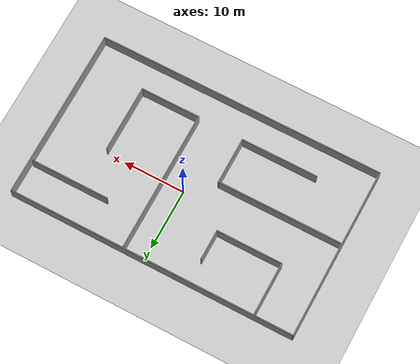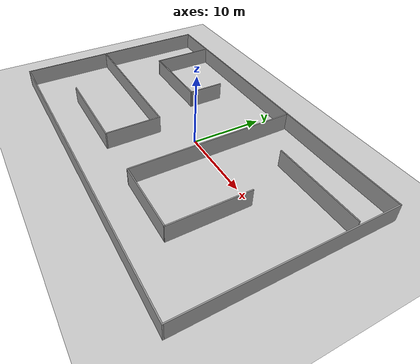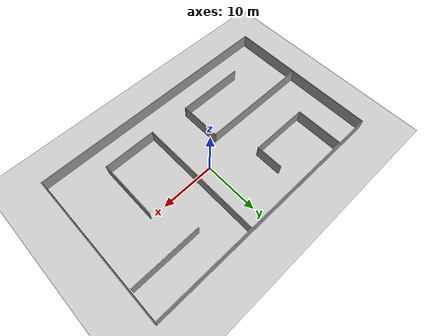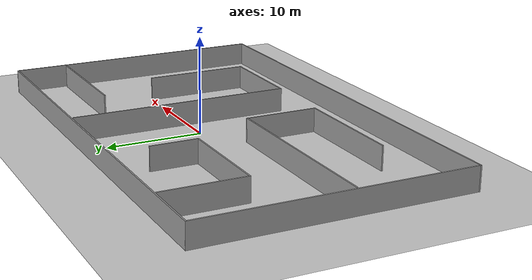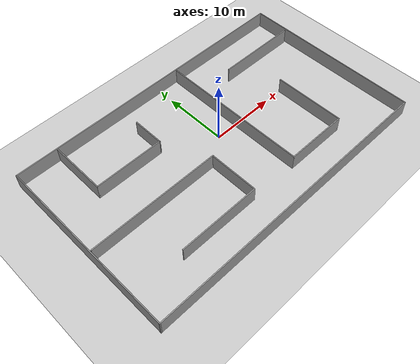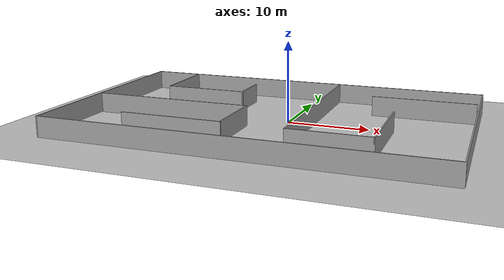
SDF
<sdf version="1.6">
 <world name="default">
  <light name="sun" type="directional">
   <pose>0 0 10 0 -0 0</pose>
   <diffuse>0.8 0.8 0.8 1</diffuse>
   <specular>0.2 0.2 0.2 1</specular>
   <attenuation>
    <range>1000</range>
    <constant>0.9</constant>
    <linear>0.01</linear>
    <quadratic>0.001</quadratic>
   </attenuation>
   <direction>-0.5 0.1 -0.9</direction>
  </light>
  <model name="ground_plane">
   <static>1</static>
   <link name="link">
    <collision name="collision">
     <geometry><plane><normal>0 0 1</normal><size>100 100</size></plane></geometry>
     <surface><friction><ode><mu>100</mu><mu2>50</mu2></ode></friction></surface>
    </collision>
    <visual name="visual">
     <cast_shadows>0</cast_shadows>
     <geometry><plane><normal>0 0 1</normal><size>100 100</size></plane></geometry>
     <material>
      <script><uri>file://media/materials/scripts/gazebo.material</uri><name>Gazebo/Grey</name></script>
     </material>
    </visual>
   </link>
  </model>
  <gravity>0 0 -9.8</gravity>
  <magnetic_field>6e-06 2.3e-05 -4.2e-05</magnetic_field>
  <atmosphere type="adiabatic"/>
  <physics name="default_physics" default="0" type="ode">
   <max_step_size>0.005</max_step_size>
   <real_time_factor>1</real_time_factor>
   <real_time_update_rate>200</real_time_update_rate>
  </physics>
  <scene><ambient>0.4 0.4 0.4 1</ambient><background>0.7 0.7 0.7 1</background><shadows>1</shadows></scene>
  <audio><device>default</device></audio>
  <spherical_coordinates>
   <surface_model>EARTH_WGS84</surface_model>
   <latitude_deg>0</latitude_deg>
   <longitude_deg>0</longitude_deg>
   <elevation>0</elevation>
   <heading_deg>0</heading_deg>
  </spherical_coordinates>
  <model name="test">
   <pose>-1.29287 -1.57756 0 0 -0 0</pose>
   <link name="Wall_0">
    <collision name="Wall_0_Collision">
     <geometry><box><size>46.75 0.15 2.5</size></box></geometry>
     <pose>0 0 1.25 0 -0 0</pose>
    </collision>
    <visual name="Wall_0_Visual">
     <pose>0 0 1.25 0 -0 0</pose>
     <geometry><box><size>46.75 0.15 2.5</size></box></geometry>
     <material>
      <script><uri>file://media/materials/scripts/gazebo.material</uri><name>Gazebo/Grey</name></script>
      <ambient>1 1 1 1</ambient>
     </material>
     <meta><layer>0</layer></meta>
    </visual>
    <pose>-1e-06 14.05 0 0 -0 0</pose>
   </link>
   <link name="Wall_1">
    <collision name="Wall_1_Collision">
     <geometry><box><size>28.25 0.15 2.5</size></box></geometry>
     <pose>0 0 1.25 0 -0 0</pose>
    </collision>
    <visual name="Wall_1_Visual">
     <pose>0 0 1.25 0 -0 0</pose>
     <geometry><box><size>28.25 0.15 2.5</size></box></geometry>
     <material>
      <script><uri>file://media/materials/scripts/gazebo.material</uri><name>Gazebo/Grey</name></script>
      <ambient>1 1 1 1</ambient>
     </material>
     <meta><layer>0</layer></meta>
    </visual>
    <pose>23.3 -0 0 0 -0 -1.5708</pose>
   </link>
   <link name="Wall_10">
    <collision name="Wall_10_Collision">
     <geometry><box><size>7.75 0.15 2.5</size></box></geometry>
     <pose>0 0 1.25 0 -0 0</pose>
    </collision>
    <visual name="Wall_10_Visual">
     <pose>0 0 1.25 0 -0 0</pose>
     <geometry><box><size>7.75 0.15 2.5</size></box></geometry>
     <material>
      <script><uri>file://media/materials/scripts/gazebo.material</uri><name>Gazebo/Grey</name></script>
      <ambient>1 1 1 1</ambient>
     </material>
     <meta><layer>0</layer></meta>
    </visual>
    <pose>-2.95528 -5.35102 0 0 -0 -1.5708</pose>
   </link>
   <link name="Wall_11">
    <collision name="Wall_11_Collision">
     <geometry><box><size>12.5 0.15 2.5</size></box></geometry>
     <pose>0 0 1.25 0 -0 0</pose>
    </collision>
    <visual name="Wall_11_Visual">
     <pose>0 0 1.25 0 -0 0</pose>
     <geometry><box><size>12.5 0.15 2.5</size></box></geometry>
     <material>
      <script><uri>file://media/materials/scripts/gazebo.material</uri><name>Gazebo/Grey</name></script>
      <ambient>1 1 1 1</ambient>
     </material>
     <meta><layer>0</layer></meta>
    </visual>
    <pose>-9.13028 -9.15102 0 0 -0 3.14159</pose>
   </link>
   <link name="Wall_13">
    <collision name="Wall_13_Collision">
     <geometry><box><size>23.25 0.15 2.5</size></box></geometry>
     <pose>0 0 1.25 0 -0 0</pose>
    </collision>
    <visual name="Wall_13_Visual">
     <pose>0 0 1.25 0 -0 0</pose>
     <geometry><box><size>23.25 0.15 2.5</size></box></geometry>
     <material>
      <script><uri>file://media/materials/scripts/gazebo.material</uri><name>Gazebo/Grey</name></script>
      <ambient>1 1 1 1</ambient>
     </material>
     <meta><layer>0</layer></meta>
    </visual>
    <pose>4.53711 2.25528 0 0 -0 -1.5708</pose>
   </link>
   <link name="Wall_14">
    <collision name="Wall_14_Collision">
     <geometry><box><size>9.75 0.15 2.5</size></box></geometry>
     <pose>0 0 1.25 0 -0 0</pose>
    </collision>
    <visual name="Wall_14_Visual">
     <pose>0 0 1.25 0 -0 0</pose>
     <geometry><box><size>9.75 0.15 2.5</size></box></geometry>
     <material>
      <script><uri>file://media/materials/scripts/gazebo.material</uri><name>Gazebo/Grey</name></script>
      <ambient>1 1 1 1</ambient>
     </material>
     <meta><layer>0</layer></meta>
    </visual>
    <pose>9.33711 -9.29472 0 0 -0 0</pose>
   </link>
   <link name="Wall_15">
    <collision name="Wall_15_Collision">
     <geometry><box><size>11 0.15 2.5</size></box></geometry>
     <pose>0 0 1.25 0 -0 0</pose>
    </collision>
    <visual name="Wall_15_Visual">
     <pose>0 0 1.25 0 -0 0</pose>
     <geometry><box><size>11 0.15 2.5</size></box></geometry>
     <material>
      <script><uri>file://media/materials/scripts/gazebo.material</uri><name>Gazebo/Grey</name></script>
      <ambient>1 1 1 1</ambient>
     </material>
     <meta><layer>0</layer></meta>
    </visual>
    <pose>14.1371 -3.86972 0 0 -0 1.5708</pose>
   </link>
   <link name="Wall_17">
    <collision name="Wall_17_Collision">
     <geometry><box><size>12.75 0.15 2.5</size></box></geometry>
     <pose>0 0 1.25 0 -0 0</pose>
    </collision>
    <visual name="Wall_17_Visual">
     <pose>0 0 1.25 0 -0 0</pose>
     <geometry><box><size>12.75 0.15 2.5</size></box></geometry>
     <material>
      <script><uri>file://media/materials/scripts/gazebo.material</uri><name>Gazebo/Grey</name></script>
      <ambient>1 1 1 1</ambient>
     </material>
     <meta><layer>0</layer></meta>
    </visual>
    <pose>16.5881 8.48258 0 0 -0 0</pose>
   </link>
   <link name="Wall_2">
    <collision name="Wall_2_Collision">
     <geometry><box><size>46.75 0.15 2.5</size></box></geometry>
     <pose>0 0 1.25 0 -0 0</pose>
    </collision>
    <visual name="Wall_2_Visual">
     <pose>0 0 1.25 0 -0 0</pose>
     <geometry><box><size>46.75 0.15 2.5</size></box></geometry>
     <material>
      <script><uri>file://media/materials/scripts/gazebo.material</uri><name>Gazebo/Grey</name></script>
      <ambient>1 1 1 1</ambient>
     </material>
     <meta><layer>0</layer></meta>
    </visual>
    <pose>-1e-06 -14.05 0 0 -0 3.14159</pose>
   </link>
   <link name="Wall_3">
    <collision name="Wall_3_Collision">
     <geometry><box><size>28.25 0.15 2.5</size></box></geometry>
     <pose>0 0 1.25 0 -0 0</pose>
    </collision>
    <visual name="Wall_3_Visual">
     <pose>0 0 1.25 0 -0 0</pose>
     <geometry><box><size>28.25 0.15 2.5</size></box></geometry>
     <material>
      <script><uri>file://media/materials/scripts/gazebo.material</uri><name>Gazebo/Grey</name></script>
      <ambient>1 1 1 1</ambient>
     </material>
     <meta><layer>0</layer></meta>
    </visual>
    <pose>-23.3 -0 0 0 -0 1.5708</pose>
   </link>
   <link name="Wall_5">
    <collision name="Wall_5_Collision">
     <geometry><box><size>8.75 0.15 2.5</size></box></geometry>
     <pose>0 0 1.25 0 -0 0</pose>
    </collision>
    <visual name="Wall_5_Visual">
     <pose>0 0 1.25 0 -0 0</pose>
     <geometry><box><size>8.75 0.15 2.5</size></box></geometry>
     <material>
      <script><uri>file://media/materials/scripts/gazebo.material</uri><name>Gazebo/Grey</name></script>
      <ambient>1 1 1 1</ambient>
     </material>
     <meta><layer>0</layer></meta>
    </visual>
    <pose>-16.9372 9.56646 0 0 -0 -1.5708</pose>
   </link>
   <link name="Wall_6">
    <collision name="Wall_6_Collision">
     <geometry><box><size>10.75 0.15 2.5</size></box></geometry>
     <pose>0 0 1.25 0 -0 0</pose>
    </collision>
    <visual name="Wall_6_Visual">
     <pose>0 0 1.25 0 -0 0</pose>
     <geometry><box><size>10.75 0.15 2.5</size></box></geometry>
     <material>
      <script><uri>file://media/materials/scripts/gazebo.material</uri><name>Gazebo/Grey</name></script>
      <ambient>1 1 1 1</ambient>
     </material>
     <meta><layer>0</layer></meta>
    </visual>
    <pose>-11.6372 5.26646 0 0 -0 0</pose>
   </link>
   <link name="Wall_7">
    <collision name="Wall_7_Collision">
     <geometry><box><size>5 0.15 2.5</size></box></geometry>
     <pose>0 0 1.25 0 -0 0</pose>
    </collision>
    <visual name="Wall_7_Visual">
     <pose>0 0 1.25 0 -0 0</pose>
     <geometry><box><size>5 0.15 2.5</size></box></geometry>
     <material>
      <script><uri>file://media/materials/scripts/gazebo.material</uri><name>Gazebo/Grey</name></script>
      <ambient>1 1 1 1</ambient>
     </material>
     <meta><layer>0</layer></meta>
    </visual>
    <pose>-6.33723 7.69146 0 0 -0 1.5708</pose>
   </link>
   <link name="Wall_9">
    <collision name="Wall_9_Collision">
     <geometry><box><size>20.25 0.15 2.5</size></box></geometry>
     <pose>0 0 1.25 0 -0 0</pose>
    </collision>
    <visual name="Wall_9_Visual">
     <pose>0 0 1.25 0 -0 0</pose>
     <geometry><box><size>20.25 0.15 2.5</size></box></geometry>
     <material>
      <script><uri>file://media/materials/scripts/gazebo.material</uri><name>Gazebo/Grey</name></script>
      <ambient>1 1 1 1</ambient>
     </material>
     <meta><layer>0</layer></meta>
    </visual>
    <pose>-13.0053 -1.55102 0 0 -0 0</pose>
   </link>
   <static>1</static>
  </model>
 </world>
</sdf>
